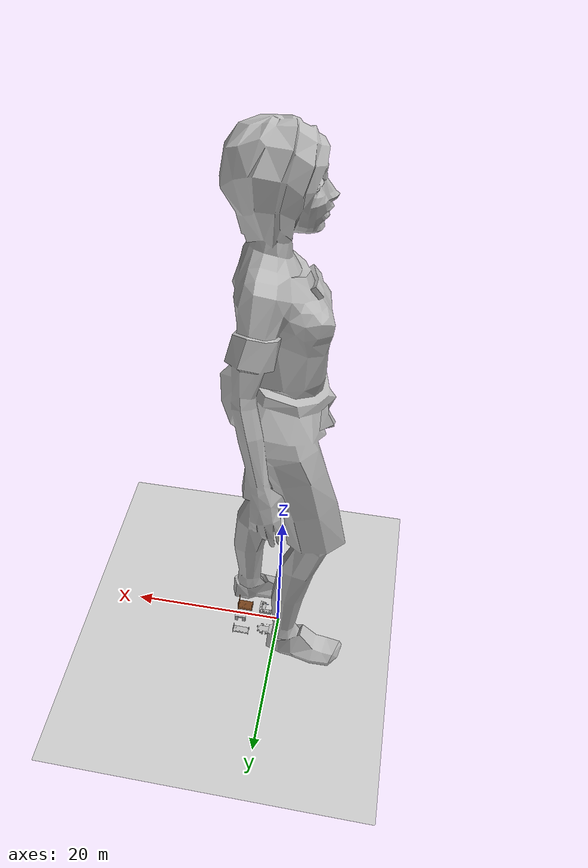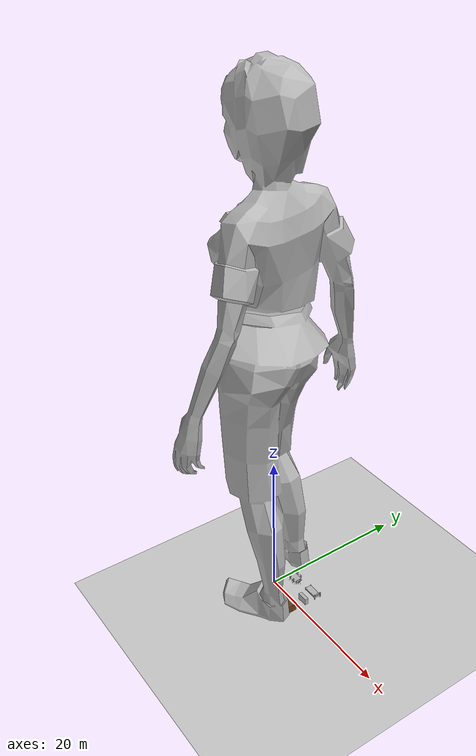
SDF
<sdf version="1.7">
 <world name="default">
  <model name="ground_plane">
   <static>1</static>
   <link name="link">
    <collision name="collision">
     <geometry><plane><normal>0 0 1</normal><size>100 100</size></plane></geometry>
     <surface><friction><ode><mu>100</mu><mu2>50</mu2></ode></friction></surface>
    </collision>
    <visual name="visual">
     <cast_shadows>0</cast_shadows>
     <geometry><plane><normal>0 0 1</normal><size>100 100</size></plane></geometry>
     <material>
      <script><uri>file://media/materials/scripts/gazebo.material</uri><name>Gazebo/Grey</name></script>
     </material>
    </visual>
   </link>
  </model>
  <model name="bed_0">
   <static>1</static>
   <link name="link">
    <visual name="visual">
     <geometry>
      <mesh><uri>/home/abin/Projects/wifi_sensing_ros2/assets/models/bed/GothicBed_01_4k.dae</uri></mesh>
     </geometry>
     <material>
      <ambient>0.45 0.25 0.1 1</ambient>
      <diffuse>0.45 0.25 0.1 1</diffuse>
      <specular>0.05 0.05 0.05 1</specular>
     </material>
    </visual>
    <collision name="collision"><geometry><box><size>2.2 1.8 1</size></box></geometry></collision>
   </link>
   <pose>4.80941 -1.24838 0 0 0 -1.56628</pose>
  </model>
  <model name="old_bed_0">
   <static>1</static>
   <link name="link">
    <visual name="visual">
     <geometry><mesh><uri>model://old_bed/old_bed.dae</uri><scale>1.25 1.25 1.25</scale></mesh></geometry>
    </visual>
    <collision name="collision">
     <geometry><mesh><uri>model://old_bed/old_bed.dae</uri></mesh></geometry>
    </collision>
   </link>
   <pose>4.75871 2.9585 0 0 0 -1.58462</pose>
  </model>
  <model name="table_and_chairs_0">
   <static>1</static>
   <link name="link">
    <visual name="visual">
     <geometry><mesh><uri>model://table_and_chairs/table_and_chairs.dae</uri></mesh></geometry>
    </visual>
    <collision name="collision">
     <geometry><mesh><uri>model://table_and_chairs/table_and_chairs.dae</uri></mesh></geometry>
    </collision>
   </link>
   <pose>1.49242 2.49762 0 0 -0 0</pose>
  </model>
  <model name="table">
   <static>1</static>
   <link name="link">
    <visual name="visual">
     <geometry><mesh><uri>model://table/table.dae</uri><scale>0.75 0.75 1</scale></mesh></geometry>
    </visual>
    <collision name="collision"><geometry><mesh><uri>model://table/table.dae</uri></mesh></geometry></collision>
   </link>
   <pose>5.17989 0.463979 0 0 -0 1.58106</pose>
  </model>
  <model name="sofa">
   <static>1</static>
   <link name="link">
    <visual name="visual">
     <geometry><mesh><uri>model://sofa/sofa.dae</uri><scale>0.02 0.02 0.02</scale></mesh></geometry>
    </visual>
    <collision name="collision"><geometry><mesh><uri>model://sofa/sofa.dae</uri></mesh></geometry></collision>
   </link>
   <pose>2.38513 -1.32865 0 0 -0 0</pose>
  </model>
  <model name="sofa_0">
   <static>1</static>
   <link name="link">
    <visual name="visual">
     <geometry><mesh><uri>model://sofa/sofa.dae</uri><scale>0.02 0.02 0.02</scale></mesh></geometry>
    </visual>
    <collision name="collision"><geometry><mesh><uri>model://sofa/sofa.dae</uri></mesh></geometry></collision>
   </link>
   <pose>1.87065 -0.643296 0 0 -0 1.55219</pose>
  </model>
  <model name="new_mobile_phone_0">
   <static>1</static>
   <link name="link">
    <visual name="visual">
     <geometry>
      <mesh><uri>model://brand_new_mobile_phone/new_mobile_phone.dae</uri><scale>0.08 0.08 0.08</scale></mesh>
     </geometry>
    </visual>
    <collision name="collision">
     <geometry><mesh><uri>model://brand_new_mobile_phone/new_mobile_phone.dae</uri></mesh></geometry>
    </collision>
   </link>
   <pose>1.86334 -2.12355 0.961605 -0 -1.08491 0.065184</pose>
  </model>
  <model name="girl_with_clothes">
   <static>1</static>
   <link name="link">
    <visual name="visual">
     <geometry>
      <mesh><uri>model://girl_with_clothes/girl_with_clothes._worker_set.dae</uri><scale>0.6 0.6 0.6</scale></mesh>
     </geometry>
    </visual>
    <collision name="collision">
     <geometry><mesh><uri>model://girl_with_clothes/girl_with_clothes._worker_set.dae</uri></mesh></geometry>
    </collision>
   </link>
   <pose>1.72155 -1.80221 0 0 0 -1.41927</pose>
  </model>
 </world>
</sdf>
